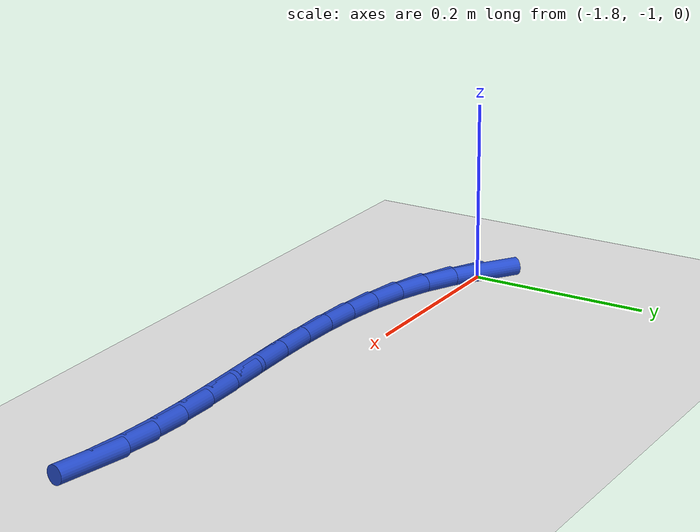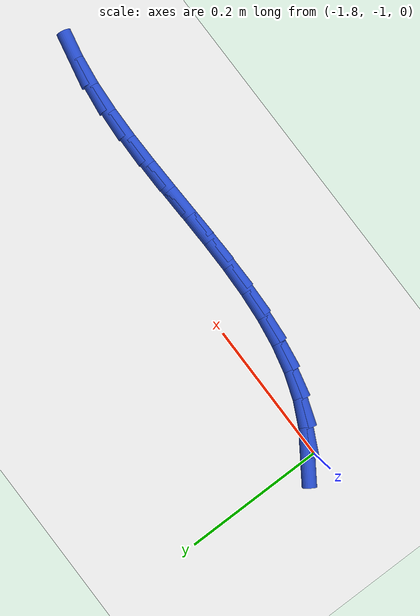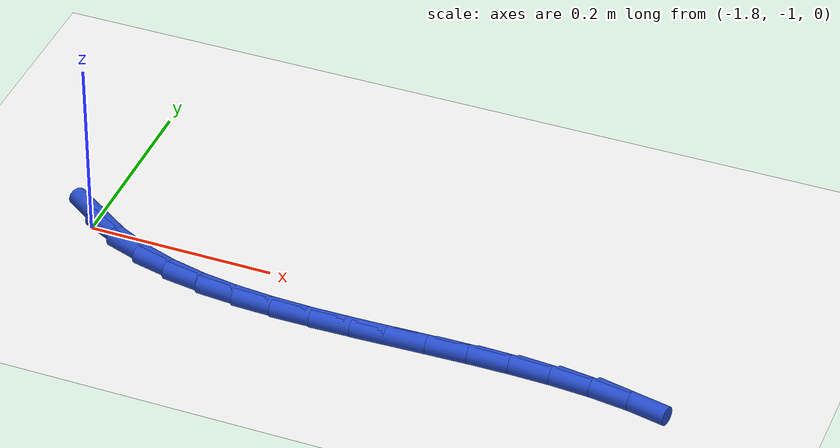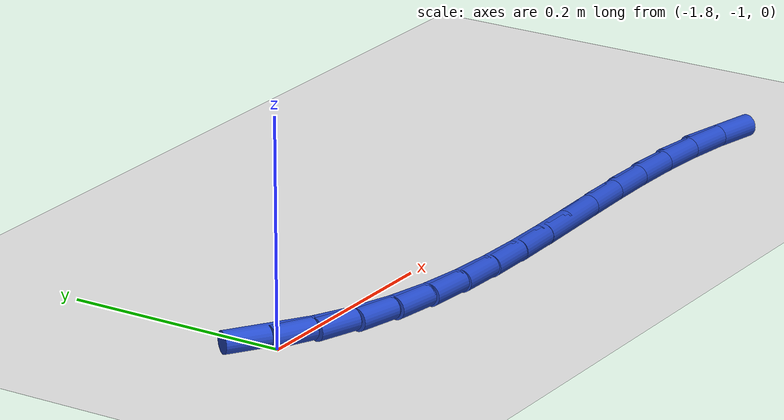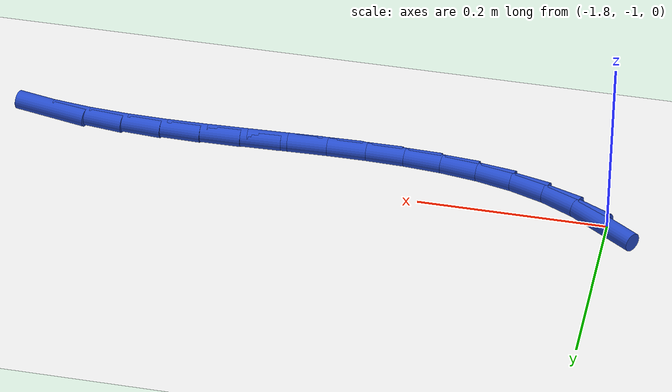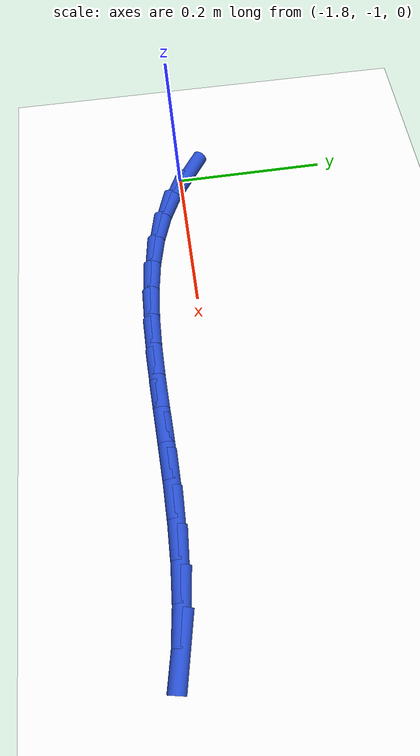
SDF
<sdf version="1.6">
 <world name="default">
  <model name="ground_plane">
   <static>1</static>
   <link name="link">
    <collision name="collision">
     <geometry><plane><normal>0 0 1</normal><size>100 100</size></plane></geometry>
     <surface><friction><ode><mu>100</mu><mu2>50</mu2></ode></friction></surface>
    </collision>
    <visual name="visual">
     <cast_shadows>0</cast_shadows>
     <geometry><plane><normal>0 0 1</normal><size>100 100</size></plane></geometry>
     <material>
      <script><uri>file://media/materials/scripts/gazebo.material</uri><name>Gazebo/WhiteGlow</name></script>
     </material>
    </visual>
   </link>
  </model>
  <model name="line">
   <link name="link_126">
    <pose>-1.7976563320020738 -0.9898693477891046 0.01 0 1.57 -0.5927407664874599</pose>
    <collision name="collision">
     <geometry><cylinder><radius>0.01</radius><length>0.08</length></cylinder></geometry>
    </collision>
    <visual name="visual">
     <material>
      <script><name>Gazebo/Blue</name><uri>file://media/materials/scripts/gazebo.material</uri></script>
     </material>
     <geometry><cylinder><radius>0.01</radius><length>0.08</length></cylinder></geometry>
    </visual>
   </link>
   <link name="link_127">
    <pose>-1.7650568602030507 -1.0118261488733107 0.01 0 1.57 -0.4562800574842156</pose>
    <collision name="collision">
     <geometry><cylinder><radius>0.01</radius><length>0.08</length></cylinder></geometry>
    </collision>
    <visual name="visual">
     <material>
      <script><name>Gazebo/Blue</name><uri>file://media/materials/scripts/gazebo.material</uri></script>
     </material>
     <geometry><cylinder><radius>0.01</radius><length>0.08</length></cylinder></geometry>
    </visual>
   </link>
   <link name="link_128">
    <pose>-1.7302602464388348 -1.0289051688540554 0.01 0 1.57 -0.33441023923417307</pose>
    <collision name="collision">
     <geometry><cylinder><radius>0.01</radius><length>0.08</length></cylinder></geometry>
    </collision>
    <visual name="visual">
     <material>
      <script><name>Gazebo/Blue</name><uri>file://media/materials/scripts/gazebo.material</uri></script>
     </material>
     <geometry><cylinder><radius>0.01</radius><length>0.08</length></cylinder></geometry>
    </visual>
   </link>
   <link name="link_129">
    <pose>-1.6935112384391031 -1.0416739798216956 0.01 0 1.57 -0.23053743191288725</pose>
    <collision name="collision">
     <geometry><cylinder><radius>0.01</radius><length>0.08</length></cylinder></geometry>
    </collision>
    <visual name="visual">
     <material>
      <script><name>Gazebo/Blue</name><uri>file://media/materials/scripts/gazebo.material</uri></script>
     </material>
     <geometry><cylinder><radius>0.01</radius><length>0.08</length></cylinder></geometry>
    </visual>
   </link>
   <link name="link_130">
    <pose>-1.6550545839335336 -1.0507001538665879 0.01 0 1.57 -0.1455362076265372</pose>
    <collision name="collision">
     <geometry><cylinder><radius>0.01</radius><length>0.08</length></cylinder></geometry>
    </collision>
    <visual name="visual">
     <material>
      <script><name>Gazebo/Blue</name><uri>file://media/materials/scripts/gazebo.material</uri></script>
     </material>
     <geometry><cylinder><radius>0.01</radius><length>0.08</length></cylinder></geometry>
    </visual>
   </link>
   <link name="link_131">
    <pose>-1.615135030651803 -1.0565512630790892 0.01 0 1.57 -0.07868498406113134</pose>
    <collision name="collision">
     <geometry><cylinder><radius>0.01</radius><length>0.08</length></cylinder></geometry>
    </collision>
    <visual name="visual">
     <material>
      <script><name>Gazebo/Blue</name><uri>file://media/materials/scripts/gazebo.material</uri></script>
     </material>
     <geometry><cylinder><radius>0.01</radius><length>0.08</length></cylinder></geometry>
    </visual>
   </link>
   <link name="link_132">
    <pose>-1.5739973263235896 -1.0597948795495564 0.01 0 1.57 -0.028576027241411752</pose>
    <collision name="collision">
     <geometry><cylinder><radius>0.01</radius><length>0.08</length></cylinder></geometry>
    </collision>
    <visual name="visual">
     <material>
      <script><name>Gazebo/Blue</name><uri>file://media/materials/scripts/gazebo.material</uri></script>
     </material>
     <geometry><cylinder><radius>0.01</radius><length>0.08</length></cylinder></geometry>
    </visual>
   </link>
   <link name="link_133">
    <pose>-1.5318862186785693 -1.0609985753683464 0.01 0 1.57 0.006271024874930169</pose>
    <collision name="collision">
     <geometry><cylinder><radius>0.01</radius><length>0.08</length></cylinder></geometry>
    </collision>
    <visual name="visual">
     <material>
      <script><name>Gazebo/Blue</name><uri>file://media/materials/scripts/gazebo.material</uri></script>
     </material>
     <geometry><cylinder><radius>0.01</radius><length>0.08</length></cylinder></geometry>
    </visual>
   </link>
   <link name="link_134">
    <pose>-1.4890464554464193 -1.0607299226258151 0.01 0 1.57 0.02707855463415443</pose>
    <collision name="collision">
     <geometry><cylinder><radius>0.01</radius><length>0.08</length></cylinder></geometry>
    </collision>
    <visual name="visual">
     <material>
      <script><name>Gazebo/Blue</name><uri>file://media/materials/scripts/gazebo.material</uri></script>
     </material>
     <geometry><cylinder><radius>0.01</radius><length>0.08</length></cylinder></geometry>
    </visual>
   </link>
   <link name="link_135">
    <pose>-1.445722784356818 -1.0595564934123203 0.01 0 1.57 0.03466323181299071</pose>
    <collision name="collision">
     <geometry><cylinder><radius>0.01</radius><length>0.08</length></cylinder></geometry>
    </collision>
    <visual name="visual">
     <material>
      <script><name>Gazebo/Blue</name><uri>file://media/materials/scripts/gazebo.material</uri></script>
     </material>
     <geometry><cylinder><radius>0.01</radius><length>0.08</length></cylinder></geometry>
    </visual>
   </link>
   <link name="link_136">
    <pose>-1.4021599531394413 -1.0580458598182174 0.01 0 1.57 0.02938426037893972</pose>
    <collision name="collision">
     <geometry><cylinder><radius>0.01</radius><length>0.08</length></cylinder></geometry>
    </collision>
    <visual name="visual">
     <material>
      <script><name>Gazebo/Blue</name><uri>file://media/materials/scripts/gazebo.material</uri></script>
     </material>
     <geometry><cylinder><radius>0.01</radius><length>0.08</length></cylinder></geometry>
    </visual>
   </link>
   <link name="link_137">
    <pose>-1.3586027095239679 -1.0567655939338647 0.01 0 1.57 0.011136933159626572</pose>
    <collision name="collision">
     <geometry><cylinder><radius>0.01</radius><length>0.08</length></cylinder></geometry>
    </collision>
    <visual name="visual">
     <material>
      <script><name>Gazebo/Blue</name><uri>file://media/materials/scripts/gazebo.material</uri></script>
     </material>
     <geometry><cylinder><radius>0.01</radius><length>0.08</length></cylinder></geometry>
    </visual>
   </link>
   <link name="link_138">
    <pose>-1.3152958012400748 -1.0562832678496181 0.01 0 1.57 -0.020626556942514702</pose>
    <collision name="collision">
     <geometry><cylinder><radius>0.01</radius><length>0.08</length></cylinder></geometry>
    </collision>
    <visual name="visual">
     <material>
      <script><name>Gazebo/Blue</name><uri>file://media/materials/scripts/gazebo.material</uri></script>
     </material>
     <geometry><cylinder><radius>0.01</radius><length>0.08</length></cylinder></geometry>
    </visual>
   </link>
   <link name="link_139">
    <pose>-1.2724839760174391 -1.0571664536558338 0.01 0 1.57 -0.06683958419662503</pose>
    <collision name="collision">
     <geometry><cylinder><radius>0.01</radius><length>0.08</length></cylinder></geometry>
    </collision>
    <visual name="visual">
     <material>
      <script><name>Gazebo/Blue</name><uri>file://media/materials/scripts/gazebo.material</uri></script>
     </material>
     <geometry><cylinder><radius>0.01</radius><length>0.08</length></cylinder></geometry>
    </visual>
   </link>
   <link name="link_140">
    <pose>-1.2304119815857375 -1.0599827234428703 0.01 0 1.57 -0.12869005869517272</pose>
    <collision name="collision">
     <geometry><cylinder><radius>0.01</radius><length>0.08</length></cylinder></geometry>
    </collision>
    <visual name="visual">
     <material>
      <script><name>Gazebo/Blue</name><uri>file://media/materials/scripts/gazebo.material</uri></script>
     </material>
     <geometry><cylinder><radius>0.01</radius><length>0.08</length></cylinder></geometry>
    </visual>
   </link>
   <link name="link_141">
    <pose>-1.1893245656746476 -1.0652996493010825 0.01 0 1.57 -0.2073504080874106</pose>
    <collision name="collision">
     <geometry><cylinder><radius>0.01</radius><length>0.08</length></cylinder></geometry>
    </collision>
    <visual name="visual">
     <material>
      <script><name>Gazebo/Blue</name><uri>file://media/materials/scripts/gazebo.material</uri></script>
     </material>
     <geometry><cylinder><radius>0.01</radius><length>0.08</length></cylinder></geometry>
    </visual>
   </link>
  </model>
 </world>
</sdf>
